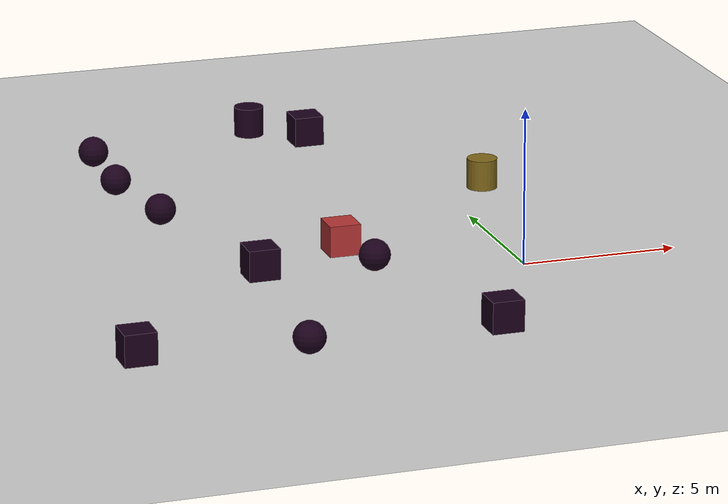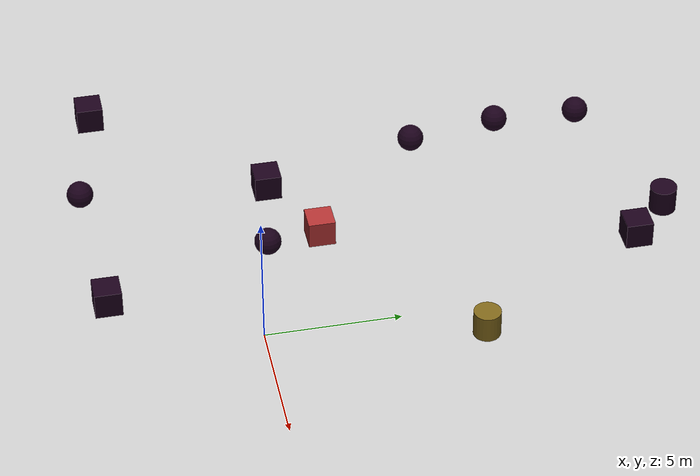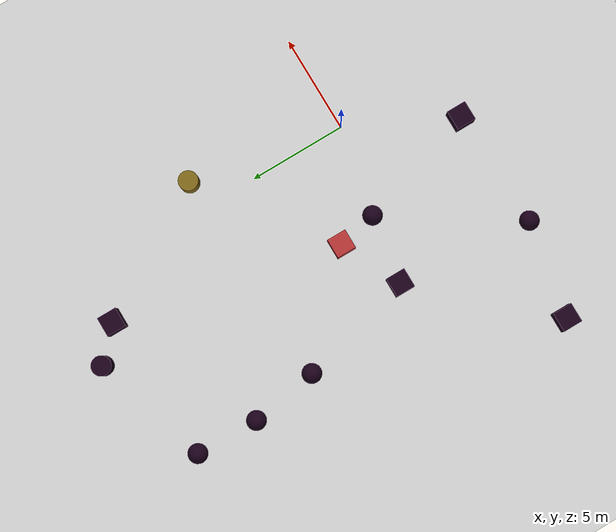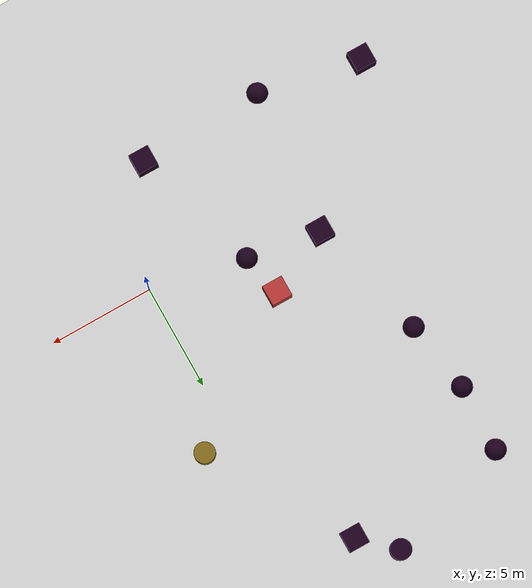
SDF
<sdf version="1.6">
 <world name="default">
  <model name="ground_plane">
   <static>1</static>
   <link name="link">
    <collision name="collision">
     <geometry><plane><normal>0 0 1</normal><size>100 100</size></plane></geometry>
     <surface><friction><ode><mu>100</mu><mu2>50</mu2></ode></friction></surface>
    </collision>
    <visual name="visual">
     <cast_shadows>0</cast_shadows>
     <geometry><plane><normal>0 0 1</normal><size>100 100</size></plane></geometry>
     <material>
      <script><uri>file://media/materials/scripts/gazebo.material</uri><name>Gazebo/Grey</name></script>
     </material>
    </visual>
   </link>
  </model>
  <model name="unit_box">
   <link name="link">
    <inertial>
     <mass>1</mass>
     <inertia>
      <ixx>0.166667</ixx>
      <ixy>0</ixy>
      <ixz>0</ixz>
      <iyy>0.166667</iyy>
      <iyz>0</iyz>
      <izz>0.166667</izz>
     </inertia>
    </inertial>
    <visual name="visual">
     <geometry><box><size>1 1 1</size></box></geometry>
     <material>
      <script><name>Gazebo/Grey</name><uri>file://media/materials/scripts/gazebo.material</uri></script>
      <shader type="pixel"><normal_map>__default__</normal_map></shader>
      <ambient>0.1 0 0.1 1</ambient>
      <diffuse>0.1 0 0.1 1</diffuse>
      <specular>0.1 0 0.1 1</specular>
      <emissive>0.1 0 0.1 1</emissive>
     </material>
    </visual>
    <collision name="collision">
     <geometry><box><size>1 1 1</size></box></geometry>
     <surface>
      <friction>
       <ode><mu>1</mu><mu2>1</mu2><fdir1>0 0 0</fdir1><slip1>0</slip1><slip2>0</slip2></ode>
       <torsional>
        <coefficient>1</coefficient>
        <patch_radius>0</patch_radius>
        <surface_radius>0</surface_radius>
        <use_patch_radius>1</use_patch_radius>
        <ode><slip>0</slip></ode>
       </torsional>
      </friction>
      <bounce><restitution_coefficient>0</restitution_coefficient><threshold>1e+06</threshold></bounce>
      <contact>
       <collide_without_contact>0</collide_without_contact>
       <collide_without_contact_bitmask>1</collide_without_contact_bitmask>
       <collide_bitmask>1</collide_bitmask>
       <ode>
        <soft_cfm>0</soft_cfm>
        <soft_erp>0.2</soft_erp>
        <kp>1e+13</kp>
        <kd>1</kd>
        <max_vel>0.01</max_vel>
        <min_depth>0</min_depth>
       </ode>
       <bullet>
        <split_impulse>1</split_impulse>
        <split_impulse_penetration_threshold>-0.01</split_impulse_penetration_threshold>
        <soft_cfm>0</soft_cfm>
        <soft_erp>0.2</soft_erp>
        <kp>1e+13</kp>
        <kd>1</kd>
       </bullet>
      </contact>
     </surface>
    </collision>
   </link>
   <static>0</static>
   <pose>-13.6246 -4.5057 0.5 0 -0 0</pose>
  </model>
  <model name="unit_box_0">
   <link name="link">
    <inertial>
     <mass>1</mass>
     <inertia>
      <ixx>0.166667</ixx>
      <ixy>0</ixy>
      <ixz>0</ixz>
      <iyy>0.166667</iyy>
      <iyz>0</iyz>
      <izz>0.166667</izz>
     </inertia>
    </inertial>
    <visual name="visual">
     <geometry><box><size>1 1 1</size></box></geometry>
     <material>
      <script><name>Gazebo/Grey</name><uri>file://media/materials/scripts/gazebo.material</uri></script>
      <shader type="pixel"><normal_map>__default__</normal_map></shader>
      <ambient>0.1 0 0.1 1</ambient>
      <diffuse>0.1 0 0.1 1</diffuse>
      <specular>0.1 0 0.1 1</specular>
      <emissive>0.1 0 0.1 1</emissive>
     </material>
    </visual>
    <collision name="collision">
     <geometry><box><size>1 1 1</size></box></geometry>
     <surface>
      <friction>
       <ode><mu>1</mu><mu2>1</mu2><fdir1>0 0 0</fdir1><slip1>0</slip1><slip2>0</slip2></ode>
       <torsional>
        <coefficient>1</coefficient>
        <patch_radius>0</patch_radius>
        <surface_radius>0</surface_radius>
        <use_patch_radius>1</use_patch_radius>
        <ode><slip>0</slip></ode>
       </torsional>
      </friction>
      <bounce><restitution_coefficient>0</restitution_coefficient><threshold>1e+06</threshold></bounce>
      <contact>
       <collide_without_contact>0</collide_without_contact>
       <collide_without_contact_bitmask>1</collide_without_contact_bitmask>
       <collide_bitmask>1</collide_bitmask>
       <ode>
        <soft_cfm>0</soft_cfm>
        <soft_erp>0.2</soft_erp>
        <kp>1e+13</kp>
        <kd>1</kd>
        <max_vel>0.01</max_vel>
        <min_depth>0</min_depth>
       </ode>
       <bullet>
        <split_impulse>1</split_impulse>
        <split_impulse_penetration_threshold>-0.01</split_impulse_penetration_threshold>
        <soft_cfm>0</soft_cfm>
        <soft_erp>0.2</soft_erp>
        <kp>1e+13</kp>
        <kd>1</kd>
       </bullet>
      </contact>
     </surface>
    </collision>
   </link>
   <static>0</static>
   <pose>-8.06649 1.51035 0.5 0 -0 0</pose>
  </model>
  <model name="unit_box_1">
   <link name="link">
    <inertial>
     <mass>1</mass>
     <inertia>
      <ixx>0.166667</ixx>
      <ixy>0</ixy>
      <ixz>0</ixz>
      <iyy>0.166667</iyy>
      <iyz>0</iyz>
      <izz>0.166667</izz>
     </inertia>
    </inertial>
    <visual name="visual">
     <geometry><box><size>1 1 1</size></box></geometry>
     <material>
      <script><name>Gazebo/Grey</name><uri>file://media/materials/scripts/gazebo.material</uri></script>
      <shader type="pixel"><normal_map>__default__</normal_map></shader>
      <ambient>0.1 0 0.1 1</ambient>
      <diffuse>0.1 0 0.1 1</diffuse>
      <specular>0.1 0 0.1 1</specular>
      <emissive>0.1 0 0.1 1</emissive>
     </material>
    </visual>
    <collision name="collision">
     <geometry><box><size>1 1 1</size></box></geometry>
     <surface>
      <friction>
       <ode><mu>1</mu><mu2>1</mu2><fdir1>0 0 0</fdir1><slip1>0</slip1><slip2>0</slip2></ode>
       <torsional>
        <coefficient>1</coefficient>
        <patch_radius>0</patch_radius>
        <surface_radius>0</surface_radius>
        <use_patch_radius>1</use_patch_radius>
        <ode><slip>0</slip></ode>
       </torsional>
      </friction>
      <bounce><restitution_coefficient>0</restitution_coefficient><threshold>1e+06</threshold></bounce>
      <contact>
       <collide_without_contact>0</collide_without_contact>
       <collide_without_contact_bitmask>1</collide_without_contact_bitmask>
       <collide_bitmask>1</collide_bitmask>
       <ode>
        <soft_cfm>0</soft_cfm>
        <soft_erp>0.2</soft_erp>
        <kp>1e+13</kp>
        <kd>1</kd>
        <max_vel>0.01</max_vel>
        <min_depth>0</min_depth>
       </ode>
       <bullet>
        <split_impulse>1</split_impulse>
        <split_impulse_penetration_threshold>-0.01</split_impulse_penetration_threshold>
        <soft_cfm>0</soft_cfm>
        <soft_erp>0.2</soft_erp>
        <kp>1e+13</kp>
        <kd>1</kd>
       </bullet>
      </contact>
     </surface>
    </collision>
   </link>
   <static>0</static>
   <pose>-2.56103 14.3896 0.5 0 -0 0</pose>
  </model>
  <model name="unit_box_3">
   <link name="link">
    <inertial>
     <mass>1</mass>
     <inertia>
      <ixx>0.166667</ixx>
      <ixy>0</ixy>
      <ixz>0</ixz>
      <iyy>0.166667</iyy>
      <iyz>0</iyz>
      <izz>0.166667</izz>
     </inertia>
    </inertial>
    <visual name="visual">
     <geometry><box><size>1 1 1</size></box></geometry>
     <material>
      <script><name>Gazebo/Grey</name><uri>file://media/materials/scripts/gazebo.material</uri></script>
      <shader type="pixel"><normal_map>__default__</normal_map></shader>
      <ambient>0.1 0 0.1 1</ambient>
      <diffuse>0.1 0 0.1 1</diffuse>
      <specular>0.1 0 0.1 1</specular>
      <emissive>0.1 0 0.1 1</emissive>
     </material>
    </visual>
    <collision name="collision">
     <geometry><box><size>1 1 1</size></box></geometry>
     <surface>
      <friction>
       <ode><mu>1</mu><mu2>1</mu2><fdir1>0 0 0</fdir1><slip1>0</slip1><slip2>0</slip2></ode>
       <torsional>
        <coefficient>1</coefficient>
        <patch_radius>0</patch_radius>
        <surface_radius>0</surface_radius>
        <use_patch_radius>1</use_patch_radius>
        <ode><slip>0</slip></ode>
       </torsional>
      </friction>
      <bounce><restitution_coefficient>0</restitution_coefficient><threshold>1e+06</threshold></bounce>
      <contact>
       <collide_without_contact>0</collide_without_contact>
       <collide_without_contact_bitmask>1</collide_without_contact_bitmask>
       <collide_bitmask>1</collide_bitmask>
       <ode>
        <soft_cfm>0</soft_cfm>
        <soft_erp>0.2</soft_erp>
        <kp>1e+13</kp>
        <kd>1</kd>
        <max_vel>0.01</max_vel>
        <min_depth>0</min_depth>
       </ode>
       <bullet>
        <split_impulse>1</split_impulse>
        <split_impulse_penetration_threshold>-0.01</split_impulse_penetration_threshold>
        <soft_cfm>0</soft_cfm>
        <soft_erp>0.2</soft_erp>
        <kp>1e+13</kp>
        <kd>1</kd>
       </bullet>
      </contact>
     </surface>
    </collision>
   </link>
   <static>0</static>
   <pose>-2.62143 -5.23559 0.5 0 -0 0</pose>
  </model>
  <model name="unit_sphere_1">
   <link name="link">
    <inertial>
     <mass>1</mass>
     <inertia><ixx>0.1</ixx><ixy>0</ixy><ixz>0</ixz><iyy>0.1</iyy><iyz>0</iyz><izz>0.1</izz></inertia>
    </inertial>
    <visual name="visual">
     <geometry><sphere><radius>0.5</radius></sphere></geometry>
     <material>
      <script><name>Gazebo/Grey</name><uri>file://media/materials/scripts/gazebo.material</uri></script>
      <shader type="pixel"><normal_map>__default__</normal_map></shader>
      <ambient>0.1 0 0.1 1</ambient>
      <diffuse>0.1 0 0.1 1</diffuse>
      <specular>0.1 0 0.1 1</specular>
      <emissive>0.1 0 0.1 1</emissive>
     </material>
    </visual>
    <collision name="collision">
     <geometry><sphere><radius>0.5</radius></sphere></geometry>
     <surface>
      <friction>
       <ode><mu>1</mu><mu2>1</mu2><fdir1>0 0 0</fdir1><slip1>0</slip1><slip2>0</slip2></ode>
       <torsional>
        <coefficient>1</coefficient>
        <patch_radius>0</patch_radius>
        <surface_radius>0</surface_radius>
        <use_patch_radius>1</use_patch_radius>
        <ode><slip>0</slip></ode>
       </torsional>
      </friction>
      <bounce><restitution_coefficient>0</restitution_coefficient><threshold>1e+06</threshold></bounce>
      <contact>
       <collide_without_contact>0</collide_without_contact>
       <collide_without_contact_bitmask>1</collide_without_contact_bitmask>
       <collide_bitmask>1</collide_bitmask>
       <ode>
        <soft_cfm>0</soft_cfm>
        <soft_erp>0.2</soft_erp>
        <kp>1e+13</kp>
        <kd>1</kd>
        <max_vel>0.01</max_vel>
        <min_depth>0</min_depth>
       </ode>
       <bullet>
        <split_impulse>1</split_impulse>
        <split_impulse_penetration_threshold>-0.01</split_impulse_penetration_threshold>
        <soft_cfm>0</soft_cfm>
        <soft_erp>0.2</soft_erp>
        <kp>1e+13</kp>
        <kd>1</kd>
       </bullet>
      </contact>
     </surface>
    </collision>
   </link>
   <static>0</static>
   <pose>-10.1723 10.838 0.5 0 -0 0</pose>
  </model>
  <model name="unit_sphere_1_0">
   <link name="link">
    <inertial>
     <mass>1</mass>
     <inertia><ixx>0.1</ixx><ixy>0</ixy><ixz>0</ixz><iyy>0.1</iyy><iyz>0</iyz><izz>0.1</izz></inertia>
    </inertial>
    <visual name="visual">
     <geometry><sphere><radius>0.5</radius></sphere></geometry>
     <material>
      <script><name>Gazebo/Grey</name><uri>file://media/materials/scripts/gazebo.material</uri></script>
      <shader type="pixel"><normal_map>__default__</normal_map></shader>
      <ambient>0.1 0 0.1 1</ambient>
      <diffuse>0.1 0 0.1 1</diffuse>
      <specular>0.1 0 0.1 1</specular>
      <emissive>0.1 0 0.1 1</emissive>
     </material>
    </visual>
    <collision name="collision">
     <geometry><sphere><radius>0.5</radius></sphere></geometry>
     <surface>
      <friction>
       <ode><mu>1</mu><mu2>1</mu2><fdir1>0 0 0</fdir1><slip1>0</slip1><slip2>0</slip2></ode>
       <torsional>
        <coefficient>1</coefficient>
        <patch_radius>0</patch_radius>
        <surface_radius>0</surface_radius>
        <use_patch_radius>1</use_patch_radius>
        <ode><slip>0</slip></ode>
       </torsional>
      </friction>
      <bounce><restitution_coefficient>0</restitution_coefficient><threshold>1e+06</threshold></bounce>
      <contact>
       <collide_without_contact>0</collide_without_contact>
       <collide_without_contact_bitmask>1</collide_without_contact_bitmask>
       <collide_bitmask>1</collide_bitmask>
       <ode>
        <soft_cfm>0</soft_cfm>
        <soft_erp>0.2</soft_erp>
        <kp>1e+13</kp>
        <kd>1</kd>
        <max_vel>0.01</max_vel>
        <min_depth>0</min_depth>
       </ode>
       <bullet>
        <split_impulse>1</split_impulse>
        <split_impulse_penetration_threshold>-0.01</split_impulse_penetration_threshold>
        <soft_cfm>0</soft_cfm>
        <soft_erp>0.2</soft_erp>
        <kp>1e+13</kp>
        <kd>1</kd>
       </bullet>
      </contact>
     </surface>
    </collision>
   </link>
   <static>0</static>
   <pose>-9.60911 7.40429 0.5 0 -0 0</pose>
  </model>
  <model name="unit_sphere_1_1">
   <link name="link">
    <inertial>
     <mass>1</mass>
     <inertia><ixx>0.1</ixx><ixy>0</ixy><ixz>0</ixz><iyy>0.1</iyy><iyz>0</iyz><izz>0.1</izz></inertia>
    </inertial>
    <visual name="visual">
     <geometry><sphere><radius>0.5</radius></sphere></geometry>
     <material>
      <script><name>Gazebo/Grey</name><uri>file://media/materials/scripts/gazebo.material</uri></script>
      <shader type="pixel"><normal_map>__default__</normal_map></shader>
      <ambient>0.1 0 0.1 1</ambient>
      <diffuse>0.1 0 0.1 1</diffuse>
      <specular>0.1 0 0.1 1</specular>
      <emissive>0.1 0 0.1 1</emissive>
     </material>
    </visual>
    <collision name="collision">
     <geometry><sphere><radius>0.5</radius></sphere></geometry>
     <surface>
      <friction>
       <ode><mu>1</mu><mu2>1</mu2><fdir1>0 0 0</fdir1><slip1>0</slip1><slip2>0</slip2></ode>
       <torsional>
        <coefficient>1</coefficient>
        <patch_radius>0</patch_radius>
        <surface_radius>0</surface_radius>
        <use_patch_radius>1</use_patch_radius>
        <ode><slip>0</slip></ode>
       </torsional>
      </friction>
      <bounce><restitution_coefficient>0</restitution_coefficient><threshold>1e+06</threshold></bounce>
      <contact>
       <collide_without_contact>0</collide_without_contact>
       <collide_without_contact_bitmask>1</collide_without_contact_bitmask>
       <collide_bitmask>1</collide_bitmask>
       <ode>
        <soft_cfm>0</soft_cfm>
        <soft_erp>0.2</soft_erp>
        <kp>1e+13</kp>
        <kd>1</kd>
        <max_vel>0.01</max_vel>
        <min_depth>0</min_depth>
       </ode>
       <bullet>
        <split_impulse>1</split_impulse>
        <split_impulse_penetration_threshold>-0.01</split_impulse_penetration_threshold>
        <soft_cfm>0</soft_cfm>
        <soft_erp>0.2</soft_erp>
        <kp>1e+13</kp>
        <kd>1</kd>
       </bullet>
      </contact>
     </surface>
    </collision>
   </link>
   <static>0</static>
   <pose>-10.0864 14.0508 0.5 0 -0 0</pose>
  </model>
  <model name="unit_sphere_1_2">
   <link name="link">
    <inertial>
     <mass>1</mass>
     <inertia><ixx>0.1</ixx><ixy>0</ixy><ixz>0</ixz><iyy>0.1</iyy><iyz>0</iyz><izz>0.1</izz></inertia>
    </inertial>
    <visual name="visual">
     <geometry><sphere><radius>0.5</radius></sphere></geometry>
     <material>
      <script><name>Gazebo/Grey</name><uri>file://media/materials/scripts/gazebo.material</uri></script>
      <shader type="pixel"><normal_map>__default__</normal_map></shader>
      <ambient>0.1 0 0.1 1</ambient>
      <diffuse>0.1 0 0.1 1</diffuse>
      <specular>0.1 0 0.1 1</specular>
      <emissive>0.1 0 0.1 1</emissive>
     </material>
    </visual>
    <collision name="collision">
     <geometry><sphere><radius>0.5</radius></sphere></geometry>
     <surface>
      <friction>
       <ode><mu>1</mu><mu2>1</mu2><fdir1>0 0 0</fdir1><slip1>0</slip1><slip2>0</slip2></ode>
       <torsional>
        <coefficient>1</coefficient>
        <patch_radius>0</patch_radius>
        <surface_radius>0</surface_radius>
        <use_patch_radius>1</use_patch_radius>
        <ode><slip>0</slip></ode>
       </torsional>
      </friction>
      <bounce><restitution_coefficient>0</restitution_coefficient><threshold>1e+06</threshold></bounce>
      <contact>
       <collide_without_contact>0</collide_without_contact>
       <collide_without_contact_bitmask>1</collide_without_contact_bitmask>
       <collide_bitmask>1</collide_bitmask>
       <ode>
        <soft_cfm>0</soft_cfm>
        <soft_erp>0.2</soft_erp>
        <kp>1e+13</kp>
        <kd>1</kd>
        <max_vel>0.01</max_vel>
        <min_depth>0</min_depth>
       </ode>
       <bullet>
        <split_impulse>1</split_impulse>
        <split_impulse_penetration_threshold>-0.01</split_impulse_penetration_threshold>
        <soft_cfm>0</soft_cfm>
        <soft_erp>0.2</soft_erp>
        <kp>1e+13</kp>
        <kd>1</kd>
       </bullet>
      </contact>
     </surface>
    </collision>
   </link>
   <static>0</static>
   <pose>-4.5547 0.951004 0.5 0 -0 0</pose>
  </model>
  <model name="unit_sphere_1_3">
   <link name="link">
    <inertial>
     <mass>1</mass>
     <inertia><ixx>0.1</ixx><ixy>0</ixy><ixz>0</ixz><iyy>0.1</iyy><iyz>0</iyz><izz>0.1</izz></inertia>
    </inertial>
    <visual name="visual">
     <geometry><sphere><radius>0.5</radius></sphere></geometry>
     <material>
      <script><name>Gazebo/Grey</name><uri>file://media/materials/scripts/gazebo.material</uri></script>
      <shader type="pixel"><normal_map>__default__</normal_map></shader>
      <ambient>0.1 0 0.1 1</ambient>
      <diffuse>0.1 0 0.1 1</diffuse>
      <specular>0.1 0 0.1 1</specular>
      <emissive>0.1 0 0.1 1</emissive>
     </material>
    </visual>
    <collision name="collision">
     <geometry><sphere><radius>0.5</radius></sphere></geometry>
     <surface>
      <friction>
       <ode><mu>1</mu><mu2>1</mu2><fdir1>0 0 0</fdir1><slip1>0</slip1><slip2>0</slip2></ode>
       <torsional>
        <coefficient>1</coefficient>
        <patch_radius>0</patch_radius>
        <surface_radius>0</surface_radius>
        <use_patch_radius>1</use_patch_radius>
        <ode><slip>0</slip></ode>
       </torsional>
      </friction>
      <bounce><restitution_coefficient>0</restitution_coefficient><threshold>1e+06</threshold></bounce>
      <contact>
       <collide_without_contact>0</collide_without_contact>
       <collide_without_contact_bitmask>1</collide_without_contact_bitmask>
       <collide_bitmask>1</collide_bitmask>
       <ode>
        <soft_cfm>0</soft_cfm>
        <soft_erp>0.2</soft_erp>
        <kp>1e+13</kp>
        <kd>1</kd>
        <max_vel>0.01</max_vel>
        <min_depth>0</min_depth>
       </ode>
       <bullet>
        <split_impulse>1</split_impulse>
        <split_impulse_penetration_threshold>-0.01</split_impulse_penetration_threshold>
        <soft_cfm>0</soft_cfm>
        <soft_erp>0.2</soft_erp>
        <kp>1e+13</kp>
        <kd>1</kd>
       </bullet>
      </contact>
     </surface>
    </collision>
   </link>
   <static>0</static>
   <pose>-8.69016 -5.45804 0.5 0 -0 0</pose>
  </model>
  <model name="unit_cylinder_0">
   <link name="link">
    <inertial>
     <mass>1</mass>
     <inertia><ixx>0.145833</ixx><ixy>0</ixy><ixz>0</ixz><iyy>0.145833</iyy><iyz>0</iyz><izz>0.125</izz></inertia>
    </inertial>
    <visual name="visual">
     <geometry><cylinder><radius>0.5</radius><length>1</length></cylinder></geometry>
     <material>
      <script><name>Gazebo/Grey</name><uri>file://media/materials/scripts/gazebo.material</uri></script>
      <shader type="pixel"><normal_map>__default__</normal_map></shader>
      <ambient>0.1 0 0.1 1</ambient>
      <diffuse>0.1 0 0.1 1</diffuse>
      <specular>0.1 0 0.1 1</specular>
      <emissive>0 0 0 1</emissive>
     </material>
    </visual>
    <collision name="collision">
     <geometry><cylinder><radius>0.5</radius><length>1</length></cylinder></geometry>
     <surface>
      <friction>
       <ode><mu>1</mu><mu2>1</mu2><fdir1>0 0 0</fdir1><slip1>0</slip1><slip2>0</slip2></ode>
       <torsional>
        <coefficient>1</coefficient>
        <patch_radius>0</patch_radius>
        <surface_radius>0</surface_radius>
        <use_patch_radius>1</use_patch_radius>
        <ode><slip>0</slip></ode>
       </torsional>
      </friction>
      <bounce><restitution_coefficient>0</restitution_coefficient><threshold>1e+06</threshold></bounce>
      <contact>
       <collide_without_contact>0</collide_without_contact>
       <collide_without_contact_bitmask>1</collide_without_contact_bitmask>
       <collide_bitmask>1</collide_bitmask>
       <ode>
        <soft_cfm>0</soft_cfm>
        <soft_erp>0.2</soft_erp>
        <kp>1e+13</kp>
        <kd>1</kd>
        <max_vel>0.01</max_vel>
        <min_depth>0</min_depth>
       </ode>
       <bullet>
        <split_impulse>1</split_impulse>
        <split_impulse_penetration_threshold>-0.01</split_impulse_penetration_threshold>
        <soft_cfm>0</soft_cfm>
        <soft_erp>0.2</soft_erp>
        <kp>1e+13</kp>
        <kd>1</kd>
       </bullet>
      </contact>
     </surface>
    </collision>
   </link>
   <static>0</static>
   <pose>-4.12112 15.8652 0.499991 0 -0 0</pose>
  </model>
  <model name="unit_cylinder_0_1">
   <link name="link">
    <inertial>
     <mass>1</mass>
     <inertia><ixx>0.145833</ixx><ixy>0</ixy><ixz>0</ixz><iyy>0.145833</iyy><iyz>0</iyz><izz>0.125</izz></inertia>
    </inertial>
    <visual name="visual">
     <geometry><cylinder><radius>0.5</radius><length>1</length></cylinder></geometry>
     <material>
      <script><name>Gazebo/Grey</name><uri>file://media/materials/scripts/gazebo.material</uri></script>
      <shader type="pixel"><normal_map>__default__</normal_map></shader>
      <ambient>0.7 0.4 0.1 1</ambient>
      <diffuse>0.5 0.4 0.1 1</diffuse>
      <specular>0.5 0.3 0.1 1</specular>
      <emissive>0.4 0.4 0 1</emissive>
     </material>
    </visual>
    <collision name="collision">
     <geometry><cylinder><radius>0.5</radius><length>1</length></cylinder></geometry>
     <surface>
      <friction>
       <ode><mu>1</mu><mu2>1</mu2><fdir1>0 0 0</fdir1><slip1>0</slip1><slip2>0</slip2></ode>
       <torsional>
        <coefficient>1</coefficient>
        <patch_radius>0</patch_radius>
        <surface_radius>0</surface_radius>
        <use_patch_radius>1</use_patch_radius>
        <ode><slip>0</slip></ode>
       </torsional>
      </friction>
      <bounce><restitution_coefficient>0</restitution_coefficient><threshold>1e+06</threshold></bounce>
      <contact>
       <collide_without_contact>0</collide_without_contact>
       <collide_without_contact_bitmask>1</collide_without_contact_bitmask>
       <collide_bitmask>1</collide_bitmask>
       <ode>
        <soft_cfm>0</soft_cfm>
        <soft_erp>0.2</soft_erp>
        <kp>1e+13</kp>
        <kd>1</kd>
        <max_vel>0.01</max_vel>
        <min_depth>0</min_depth>
       </ode>
       <bullet>
        <split_impulse>1</split_impulse>
        <split_impulse_penetration_threshold>-0.01</split_impulse_penetration_threshold>
        <soft_cfm>0</soft_cfm>
        <soft_erp>0.2</soft_erp>
        <kp>1e+13</kp>
        <kd>1</kd>
       </bullet>
      </contact>
     </surface>
    </collision>
   </link>
   <static>0</static>
   <pose>1.44203 7.77005 0.499991 0 -0 0</pose>
  </model>
  <model name="unit_box_2">
   <link name="link">
    <inertial>
     <mass>1</mass>
     <inertia>
      <ixx>0.166667</ixx>
      <ixy>0</ixy>
      <ixz>0</ixz>
      <iyy>0.166667</iyy>
      <iyz>0</iyz>
      <izz>0.166667</izz>
     </inertia>
    </inertial>
    <visual name="visual">
     <geometry><box><size>1 1 1</size></box></geometry>
     <material>
      <script><name>Gazebo/Grey</name><uri>file://media/materials/scripts/gazebo.material</uri></script>
      <shader type="pixel"><normal_map>__default__</normal_map></shader>
      <ambient>0.8 0 0.1 1</ambient>
      <diffuse>0.7 0.2 0.2 1</diffuse>
      <specular>0.6 0.1 0.2 1</specular>
      <emissive>0.6 0.2 0.2 1</emissive>
     </material>
    </visual>
    <collision name="collision">
     <geometry><box><size>1 1 1</size></box></geometry>
     <surface>
      <friction>
       <ode><mu>1</mu><mu2>1</mu2><fdir1>0 0 0</fdir1><slip1>0</slip1><slip2>0</slip2></ode>
       <torsional>
        <coefficient>1</coefficient>
        <patch_radius>0</patch_radius>
        <surface_radius>0</surface_radius>
        <use_patch_radius>1</use_patch_radius>
        <ode><slip>0</slip></ode>
       </torsional>
      </friction>
      <bounce><restitution_coefficient>0</restitution_coefficient><threshold>1e+06</threshold></bounce>
      <contact>
       <collide_without_contact>0</collide_without_contact>
       <collide_without_contact_bitmask>1</collide_without_contact_bitmask>
       <collide_bitmask>1</collide_bitmask>
       <ode>
        <soft_cfm>0</soft_cfm>
        <soft_erp>0.2</soft_erp>
        <kp>1e+13</kp>
        <kd>1</kd>
        <max_vel>0.01</max_vel>
        <min_depth>0</min_depth>
       </ode>
       <bullet>
        <split_impulse>1</split_impulse>
        <split_impulse_penetration_threshold>-0.01</split_impulse_penetration_threshold>
        <soft_cfm>0</soft_cfm>
        <soft_erp>0.2</soft_erp>
        <kp>1e+13</kp>
        <kd>1</kd>
       </bullet>
      </contact>
     </surface>
    </collision>
   </link>
   <static>0</static>
   <pose>-4.99762 2.97642 0.5 0 -0 0</pose>
  </model>
 </world>
</sdf>
